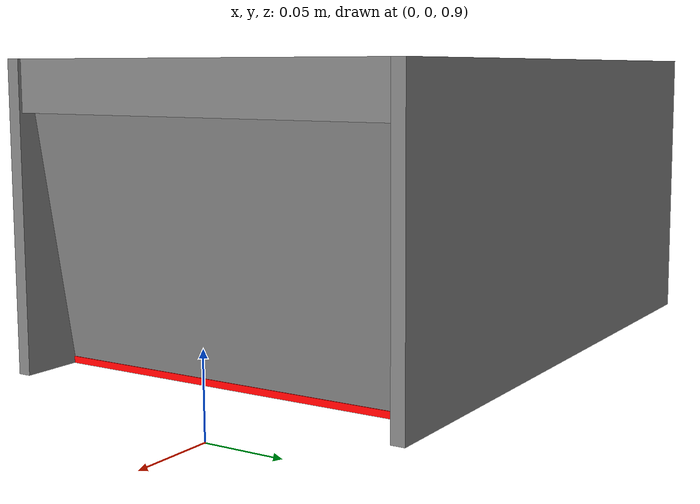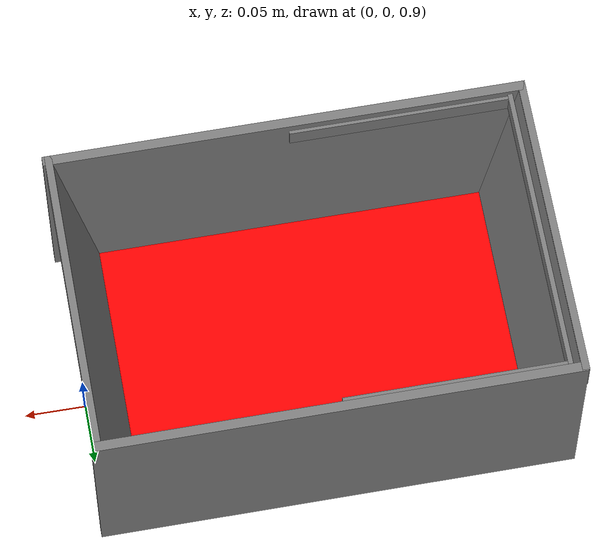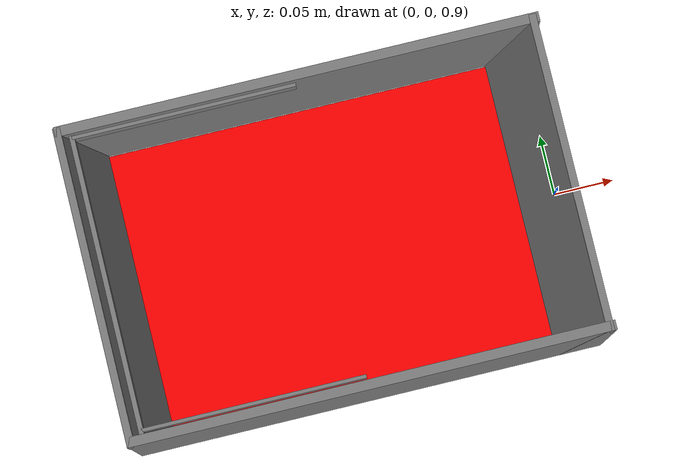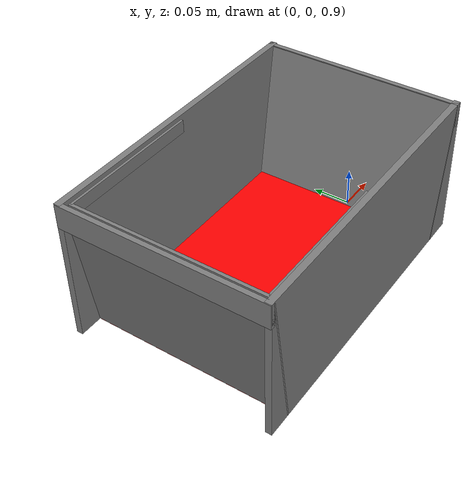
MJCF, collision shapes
<mujoco model="bucket">
  <compiler angle="radian" eulerseq="zyx" autolimits="true" />
  <default>
    <default class="bucket">
      <mesh scale="0.25 0.25 0.25" />
      <joint limited="true" damping="0.01" armature="0.01" frictionloss="0.01" />
      <motor ctrllimited="true" />
      <equality solref="0.001 2" />
      <default class="bucket/visual">
        <geom condim="1" contype="0" conaffinity="0" group="2" />
      </default>
      <default class="bucket/collision">
        <geom condim="4" friction="1.5 0.01 0.001" solref="0.001 2" group="3" />
      </default>
    </default>
  </default>
  <asset>
    <material name="bucket_original-5_material_0_0" specular="0.06666666666666667" shininess="0.03" rgba="1 0 0 1" />
    <mesh file="bucket/textured_objs_thickness/original-5/original-5.obj" name="bucket_original-5" scale="0.25 0.25 0.25" />
    <material name="bucket_original-1_1_material_0_0" specular="0.06666666666666667" shininess="0.03" rgba="1 0 0 1" />
    <material name="bucket_original-1_0_material_1_0" specular="0.06666666666666667" shininess="0.03" rgba="0 0 0 1" />
    <mesh file="bucket/textured_objs_thickness/original-1/original-1_0.obj" name="bucket_original-1_0" scale="0.25 0.25 0.25" />
    <mesh file="bucket/textured_objs_thickness/original-1/original-1_1.obj" name="bucket_original-1_1" scale="0.25 0.25 0.25" />
    <material name="bucket_original-4_material_0_0" specular="0.06666666666666667" shininess="0.03" rgba="1 0 0 1" />
    <mesh file="bucket/textured_objs_thickness/original-4/original-4.obj" name="bucket_original-4" scale="0.25 0.25 0.25" />
    <material name="bucket_original-3_material_0_0" specular="0.06666666666666667" shininess="0.03" rgba="1 0 0 1" />
    <mesh file="bucket/textured_objs_thickness/original-3/original-3.obj" name="bucket_original-3" scale="0.25 0.25 0.25" />
  </asset>
  <worldbody>
    <light directional="true" pos="0 0 0.5" dir="0 0 -1" castshadow="false" />
    <body name="bucket" pos="-0.2 0 1.0" quat="0 0 -0.7071 -0.7071" childclass="bucket">
      <freejoint name="bucket_root" />
      <site name="bucket_ref_0" pos="-0.18 -0.08 -0.13" size="0.01" rgba="1 0 0 0"/>
      <site name="bucket_ref_1" pos="-0.18 -0.08  0.12" size="0.01" rgba="1 0 0 0"/>
      <site name="bucket_ref_2" pos="-0.18  0.09 -0.13" size="0.01" rgba="1 0 0 0"/>
      <site name="bucket_ref_3" pos="-0.18  0.09  0.12" size="0.01" rgba="1 0 0 0"/>

      <site name="bucket_ref_4" pos=" 0.16 -0.08 -0.13" size="0.01" rgba="1 0 0 0"/>
      <site name="bucket_ref_5" pos=" 0.16 -0.08  0.12" size="0.01" rgba="1 0 0 0"/>
      <site name="bucket_ref_6" pos=" 0.16  0.09 -0.13" size="0.01" rgba="1 0 0 0"/>
      <site name="bucket_ref_7" pos=" 0.16  0.09  0.12" size="0.01" rgba="1 0 0 0"/>
      <geom pos="0.0 0.0 0.0" quat="1 0 0 0" type="mesh" mesh="bucket_original-4" material="bucket_original-4_material_0_0" density="0" class="bucket/visual" />
      <geom pos="0.0 0.0 0.0" quat="1 0 0 0" type="mesh" mesh="bucket_original-3" material="bucket_original-3_material_0_0" density="0" class="bucket/visual" />
      <geom pos="0.0 0.0 0.0" quat="1 0 0 0" type="mesh" mesh="bucket_original-5" material="bucket_original-5_material_0_0" density="0" class="bucket/visual" />
      <body name="bucket_link_0" pos="-0.002209335104562346 0.03504974806266648 0.0">
        <joint name="bucket_joint_0" pos="-0.005 0.055 0" axis="0 0 1" range="0.0 3.141592653589793" type="hinge" />
        <geom pos="0.002209335104562346 -0.03504974806266648 0.0" quat="1 0 0 0" type="mesh" mesh="bucket_original-1_0" material="bucket_original-1_0_material_1_0" density="0" class="bucket/visual" />
        <geom pos="0.002209335104562346 -0.03504974806266648 0.0" quat="1 0 0 0" type="mesh" mesh="bucket_original-1_1" material="bucket_original-1_1_material_0_0" density="0" class="bucket/visual" />
        <geom name="handle1" type="box" size="0.002 0.008 0.12" pos="0.175 0.053 -0.005" class="bucket/collision" />
        <geom name="handle2" type="box" size="0.09 0.008 0.0014" pos="0.085 0.053 -0.122" class="bucket/collision" />
        <geom name="handle3" type="box" size="0.09 0.008 0.0014" pos="0.085 0.053 0.113" class="bucket/collision" />
      </body>
    <geom name="bucket_back" type="box" size="0.195 0.09 0.004" pos="-0.01 0.01 -0.129" class="bucket/collision" />
    <geom name="bucket_front" type="box" size="0.195 0.09 0.004" pos="-0.01 0.01 0.12" class="bucket/collision" />
    <geom name="bucket_l" type="box" size="0.003 0.015 0.128" pos="-0.2 0.085 -0.005" class="bucket/collision" />
    <geom name="bucket_r" type="box" size="0.003 0.015 0.128" pos="0.183 0.085 -0.005" class="bucket/collision" />
    <geom name="bucket_left" type="box" size="0.001 0.09 0.128" quat="0.996566 0.000000 0.000000 0.082808" pos="-0.183 0.01 -0.005" mass="0.05" class="bucket/collision" />
    <geom name="bucket_right" type="box" size="0.001 0.09 0.128" quat="0.997503 0.000000 0.000000 -0.070627" pos="0.168 0.01 -0.005" mass="0.05" class="bucket/collision" />
    <geom name="bucket_bottom" type="box" size="0.163 0.002 0.12" pos="-0.007 -0.078 -0.005" class="bucket/collision" rgba="1 0 0 1" group="1" />
    </body>
  </worldbody>
  <actuator>
    <motor name="bucket_joint_0" joint="bucket_joint_0" ctrllimited="true" ctrlrange="-1 1" gear="10" />
  </actuator>
</mujoco>
